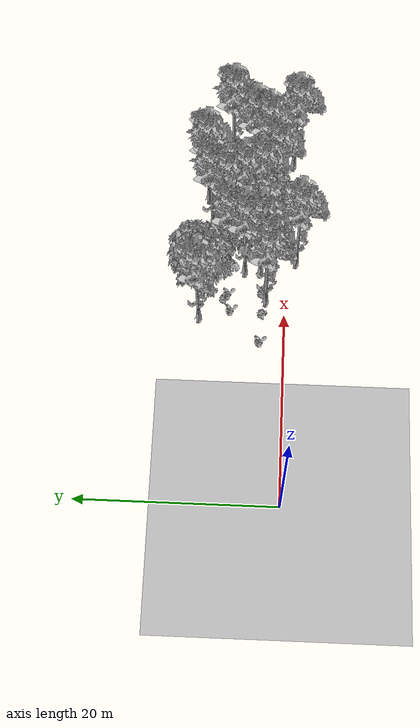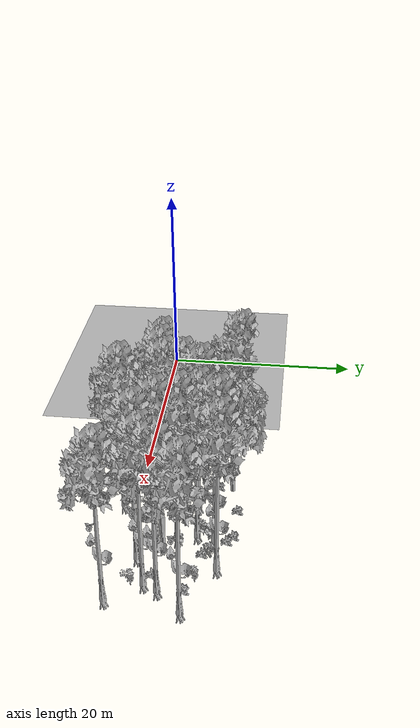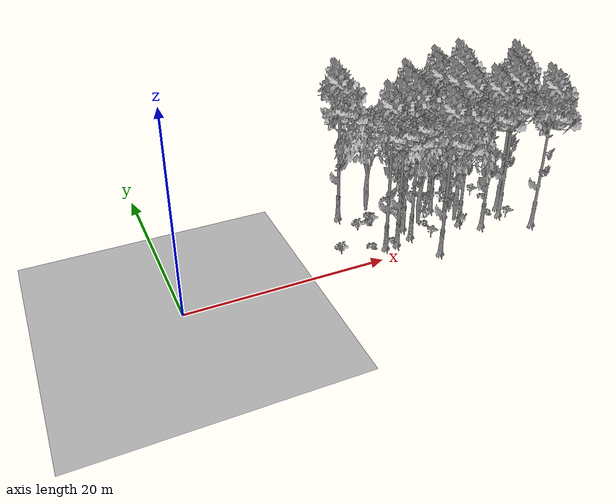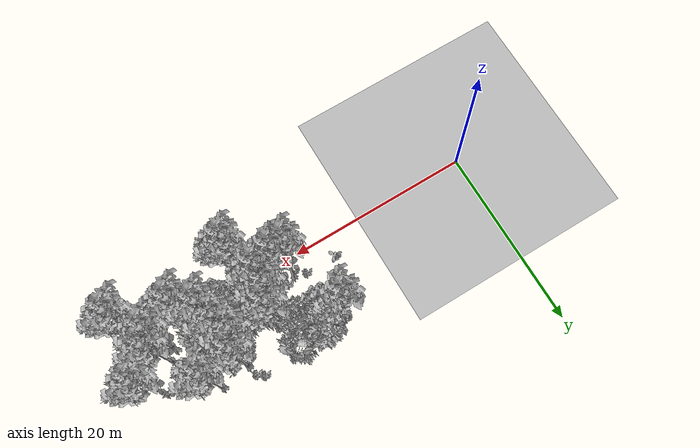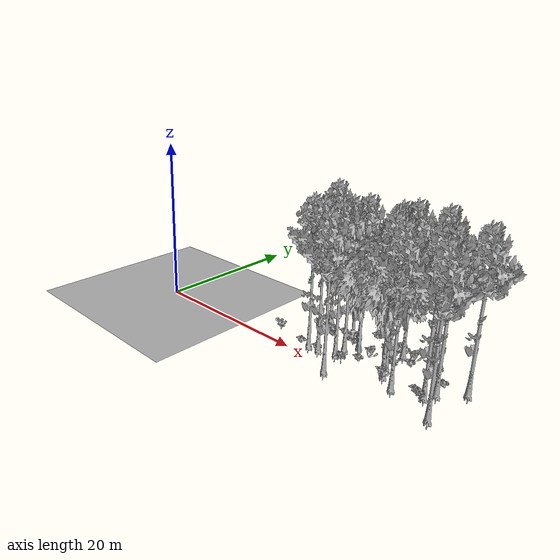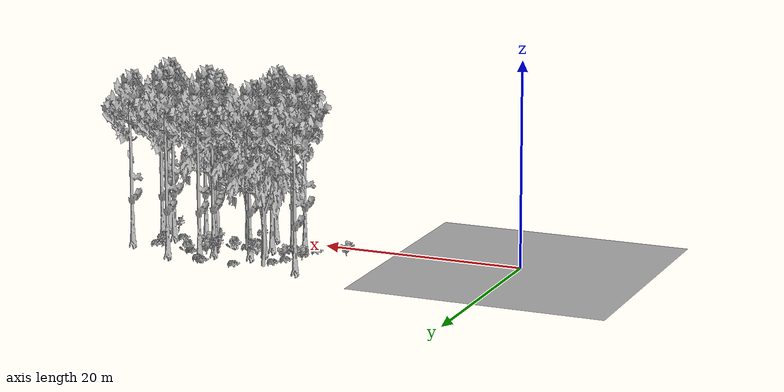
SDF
<sdf version="1.7">
 <world name="default">
  <model name="ground_plane">
   <static>1</static>
   <link name="link">
    <collision name="collision">
     <pose>-50 0 0 0 -0 0</pose>
     <geometry><plane><normal>0 0 1</normal><size>80 80</size></plane></geometry>
     <surface><contact><ode><min_depth>0.01</min_depth><max_vel>0</max_vel></ode></contact></surface>
    </collision>
    <visual name="grass">
     <cast_shadows>0</cast_shadows>
     <geometry>
      <mesh>
       <scale>0.46714285714285714 0.46714285714285714 0.1</scale>
       <uri>file://grass_plane/meshes/grass_plane.dae</uri>
      </mesh>
     </geometry>
    </visual>
   </link>
  </model>
  <model name="Tree 1">
   <static>1</static>
   <pose>36.011166176725425 3.5830698787518287 0 1.57079 -0 0</pose>
   <link name="link">
    <collision name="collision">
     <geometry><mesh><scale>3.5 5 3.5</scale><uri>model://tree_9/meshes/tree_9.obj</uri></mesh></geometry>
    </collision>
    <visual name="visual">
     <geometry><mesh><scale>3.5 5 3.5</scale><uri>model://tree_9/meshes/tree_9.obj</uri></mesh></geometry>
    </visual>
   </link>
  </model>
  <model name="Tree 53">
   <static>1</static>
   <pose>26.41757852774535 4.227787707532244 0 1.57079 -0 0</pose>
   <link name="link">
    <collision name="collision">
     <geometry><mesh><scale>3.5 5 3.5</scale><uri>model://tree_2/meshes/tree_2.obj</uri></mesh></geometry>
    </collision>
    <visual name="visual">
     <geometry><mesh><scale>3.5 5 3.5</scale><uri>model://tree_2/meshes/tree_2.obj</uri></mesh></geometry>
    </visual>
   </link>
  </model>
  <model name="Tree 92">
   <static>1</static>
   <pose>24.65616780736501 2.5748100622785515 0 1.57079 -0 0</pose>
   <link name="link">
    <collision name="collision">
     <geometry><mesh><scale>3.5 5 3.5</scale><uri>model://tree_9/meshes/tree_9.obj</uri></mesh></geometry>
    </collision>
    <visual name="visual">
     <geometry><mesh><scale>3.5 5 3.5</scale><uri>model://tree_9/meshes/tree_9.obj</uri></mesh></geometry>
    </visual>
   </link>
  </model>
  <model name="Tree 158">
   <static>1</static>
   <pose>25.485224622960985 5.766367770752574 0 1.57079 -0 0</pose>
   <link name="link">
    <collision name="collision">
     <geometry><mesh><scale>3.5 5 3.5</scale><uri>model://tree_9/meshes/tree_9.obj</uri></mesh></geometry>
    </collision>
    <visual name="visual">
     <geometry><mesh><scale>3.5 5 3.5</scale><uri>model://tree_9/meshes/tree_9.obj</uri></mesh></geometry>
    </visual>
   </link>
  </model>
  <model name="Tree 161">
   <static>1</static>
   <pose>22.605358519482905 8.638592294109628 0 1.57079 -0 0</pose>
   <link name="link">
    <collision name="collision">
     <geometry><mesh><scale>3.5 5 3.5</scale><uri>model://tree_2/meshes/tree_2.obj</uri></mesh></geometry>
    </collision>
    <visual name="visual">
     <geometry><mesh><scale>3.5 5 3.5</scale><uri>model://tree_2/meshes/tree_2.obj</uri></mesh></geometry>
    </visual>
   </link>
  </model>
  <model name="Tree 180">
   <static>1</static>
   <pose>29.93284033761836 7.681021423904426 0 1.57079 -0 0</pose>
   <link name="link">
    <collision name="collision">
     <geometry><mesh><scale>3.5 5 3.5</scale><uri>model://tree_9/meshes/tree_9.obj</uri></mesh></geometry>
    </collision>
    <visual name="visual">
     <geometry><mesh><scale>3.5 5 3.5</scale><uri>model://tree_9/meshes/tree_9.obj</uri></mesh></geometry>
    </visual>
   </link>
  </model>
  <model name="Tree 213">
   <static>1</static>
   <pose>30.570684885395536 2.694745732019399 0 1.57079 -0 0</pose>
   <link name="link">
    <collision name="collision">
     <geometry><mesh><scale>3.5 5 3.5</scale><uri>model://tree_9/meshes/tree_9.obj</uri></mesh></geometry>
    </collision>
    <visual name="visual">
     <geometry><mesh><scale>3.5 5 3.5</scale><uri>model://tree_9/meshes/tree_9.obj</uri></mesh></geometry>
    </visual>
   </link>
  </model>
  <model name="Tree 247">
   <static>1</static>
   <pose>25.913943571221964 -1.0603098498243355 0 1.57079 -0 0</pose>
   <link name="link">
    <collision name="collision">
     <geometry><mesh><scale>3.5 5 3.5</scale><uri>model://tree_9/meshes/tree_9.obj</uri></mesh></geometry>
    </collision>
    <visual name="visual">
     <geometry><mesh><scale>3.5 5 3.5</scale><uri>model://tree_9/meshes/tree_9.obj</uri></mesh></geometry>
    </visual>
   </link>
  </model>
  <model name="Tree 306">
   <static>1</static>
   <pose>29.848794799827402 4.410744058598169 0 1.57079 -0 0</pose>
   <link name="link">
    <collision name="collision">
     <geometry><mesh><scale>3.5 5 3.5</scale><uri>model://tree_9/meshes/tree_9.obj</uri></mesh></geometry>
    </collision>
    <visual name="visual">
     <geometry><mesh><scale>3.5 5 3.5</scale><uri>model://tree_9/meshes/tree_9.obj</uri></mesh></geometry>
    </visual>
   </link>
  </model>
  <model name="Tree 310">
   <static>1</static>
   <pose>21.43689418973787 1.9416385594009427 0 1.57079 -0 0</pose>
   <link name="link">
    <collision name="collision">
     <geometry><mesh><scale>3.5 5 3.5</scale><uri>model://tree_9/meshes/tree_9.obj</uri></mesh></geometry>
    </collision>
    <visual name="visual">
     <geometry><mesh><scale>3.5 5 3.5</scale><uri>model://tree_9/meshes/tree_9.obj</uri></mesh></geometry>
    </visual>
   </link>
  </model>
  <model name="Tree 332">
   <static>1</static>
   <pose>33.082977608917886 8.20005149457024 0 1.57079 -0 0</pose>
   <link name="link">
    <collision name="collision">
     <geometry><mesh><scale>3.5 5 3.5</scale><uri>model://tree_9/meshes/tree_9.obj</uri></mesh></geometry>
    </collision>
    <visual name="visual">
     <geometry><mesh><scale>3.5 5 3.5</scale><uri>model://tree_9/meshes/tree_9.obj</uri></mesh></geometry>
    </visual>
   </link>
  </model>
  <model name="Tree 372">
   <static>1</static>
   <pose>24.690714505694665 4.172185700839826 0 1.57079 -0 0</pose>
   <link name="link">
    <collision name="collision">
     <geometry><mesh><scale>3.5 5 3.5</scale><uri>model://tree_9/meshes/tree_9.obj</uri></mesh></geometry>
    </collision>
    <visual name="visual">
     <geometry><mesh><scale>3.5 5 3.5</scale><uri>model://tree_9/meshes/tree_9.obj</uri></mesh></geometry>
    </visual>
   </link>
  </model>
  <model name="Tree 403">
   <static>1</static>
   <pose>35.37519654786941 2.337173214591374 0 1.57079 -0 0</pose>
   <link name="link">
    <collision name="collision">
     <geometry><mesh><scale>3.5 5 3.5</scale><uri>model://tree_9/meshes/tree_9.obj</uri></mesh></geometry>
    </collision>
    <visual name="visual">
     <geometry><mesh><scale>3.5 5 3.5</scale><uri>model://tree_9/meshes/tree_9.obj</uri></mesh></geometry>
    </visual>
   </link>
  </model>
  <model name="Tree 431">
   <static>1</static>
   <pose>37.396843473735686 -0.5809701913476317 0 1.57079 -0 0</pose>
   <link name="link">
    <collision name="collision">
     <geometry><mesh><scale>3.5 5 3.5</scale><uri>model://tree_9/meshes/tree_9.obj</uri></mesh></geometry>
    </collision>
    <visual name="visual">
     <geometry><mesh><scale>3.5 5 3.5</scale><uri>model://tree_9/meshes/tree_9.obj</uri></mesh></geometry>
    </visual>
   </link>
  </model>
  <model name="Tree 492">
   <static>1</static>
   <pose>19.398027254048856 8.67147882097278 0 1.57079 -0 0</pose>
   <link name="link">
    <collision name="collision">
     <geometry><mesh><scale>3.5 5 3.5</scale><uri>model://tree_9/meshes/tree_9.obj</uri></mesh></geometry>
    </collision>
    <visual name="visual">
     <geometry><mesh><scale>3.5 5 3.5</scale><uri>model://tree_9/meshes/tree_9.obj</uri></mesh></geometry>
    </visual>
   </link>
  </model>
  <model name="Tree 535">
   <static>1</static>
   <pose>30.211178976348307 3.179163354396202 0 1.57079 -0 0</pose>
   <link name="link">
    <collision name="collision">
     <geometry><mesh><scale>3.5 5 3.5</scale><uri>model://tree_2/meshes/tree_2.obj</uri></mesh></geometry>
    </collision>
    <visual name="visual">
     <geometry><mesh><scale>3.5 5 3.5</scale><uri>model://tree_2/meshes/tree_2.obj</uri></mesh></geometry>
    </visual>
   </link>
  </model>
  <model name="Tree 553">
   <static>1</static>
   <pose>29.204708767722906 6.0867261093357286 0 1.57079 -0 0</pose>
   <link name="link">
    <collision name="collision">
     <geometry><mesh><scale>3.5 5 3.5</scale><uri>model://tree_9/meshes/tree_9.obj</uri></mesh></geometry>
    </collision>
    <visual name="visual">
     <geometry><mesh><scale>3.5 5 3.5</scale><uri>model://tree_9/meshes/tree_9.obj</uri></mesh></geometry>
    </visual>
   </link>
  </model>
  <model name="Tree 617">
   <static>1</static>
   <pose>38.15550416428148 5.777747183673924 0 1.57079 -0 0</pose>
   <link name="link">
    <collision name="collision">
     <geometry><mesh><scale>3.5 5 3.5</scale><uri>model://tree_9/meshes/tree_9.obj</uri></mesh></geometry>
    </collision>
    <visual name="visual">
     <geometry><mesh><scale>3.5 5 3.5</scale><uri>model://tree_9/meshes/tree_9.obj</uri></mesh></geometry>
    </visual>
   </link>
  </model>
  <model name="Tree 629">
   <static>1</static>
   <pose>32.41717122554958 1.2761076037642738 0 1.57079 -0 0</pose>
   <link name="link">
    <collision name="collision">
     <geometry><mesh><scale>3.5 5 3.5</scale><uri>model://tree_9/meshes/tree_9.obj</uri></mesh></geometry>
    </collision>
    <visual name="visual">
     <geometry><mesh><scale>3.5 5 3.5</scale><uri>model://tree_9/meshes/tree_9.obj</uri></mesh></geometry>
    </visual>
   </link>
  </model>
  <model name="Tree 633">
   <static>1</static>
   <pose>22.739344329787663 1.9725892908579397 0 1.57079 -0 0</pose>
   <link name="link">
    <collision name="collision">
     <geometry><mesh><scale>3.5 5 3.5</scale><uri>model://tree_9/meshes/tree_9.obj</uri></mesh></geometry>
    </collision>
    <visual name="visual">
     <geometry><mesh><scale>3.5 5 3.5</scale><uri>model://tree_9/meshes/tree_9.obj</uri></mesh></geometry>
    </visual>
   </link>
  </model>
  <model name="Bush 28">
   <static>1</static>
   <pose>26.315735130325436 1.34230399729244 0 1.57079 -0 0</pose>
   <link name="link">
    <collision name="collision">
     <geometry><mesh><scale>2 2 2</scale><uri>model://bush_5/meshes/bush_5.obj</uri></mesh></geometry>
     <surface><contact><collide_without_contact>false</collide_without_contact></contact></surface>
    </collision>
    <visual name="visual">
     <geometry><mesh><scale>2 2 2</scale><uri>model://bush_5/meshes/bush_5.obj</uri></mesh></geometry>
    </visual>
   </link>
  </model>
  <model name="Bush 71">
   <static>1</static>
   <pose>35.58511829089555 5.676902397452288 0 1.57079 -0 0</pose>
   <link name="link">
    <collision name="collision">
     <geometry><mesh><scale>2 2 2</scale><uri>model://bush_2/meshes/bush_2.obj</uri></mesh></geometry>
     <surface><contact><collide_without_contact>false</collide_without_contact></contact></surface>
    </collision>
    <visual name="visual">
     <geometry><mesh><scale>2 2 2</scale><uri>model://bush_2/meshes/bush_2.obj</uri></mesh></geometry>
    </visual>
   </link>
  </model>
  <model name="Bush 85">
   <static>1</static>
   <pose>29.580902801178922 8.693277159983602 0 1.57079 -0 0</pose>
   <link name="link">
    <collision name="collision">
     <geometry><mesh><scale>2 2 2</scale><uri>model://bush_2/meshes/bush_2.obj</uri></mesh></geometry>
     <surface><contact><collide_without_contact>false</collide_without_contact></contact></surface>
    </collision>
    <visual name="visual">
     <geometry><mesh><scale>2 2 2</scale><uri>model://bush_2/meshes/bush_2.obj</uri></mesh></geometry>
    </visual>
   </link>
  </model>
  <model name="Bush 105">
   <static>1</static>
   <pose>26.824427063391653 3.6912222505641523 0 1.57079 -0 0</pose>
   <link name="link">
    <collision name="collision">
     <geometry><mesh><scale>2 2 2</scale><uri>model://bush_2/meshes/bush_2.obj</uri></mesh></geometry>
     <surface><contact><collide_without_contact>false</collide_without_contact></contact></surface>
    </collision>
    <visual name="visual">
     <geometry><mesh><scale>2 2 2</scale><uri>model://bush_2/meshes/bush_2.obj</uri></mesh></geometry>
    </visual>
   </link>
  </model>
  <model name="Bush 133">
   <static>1</static>
   <pose>34.10267542886211 2.8026644773143374 0 1.57079 -0 0</pose>
   <link name="link">
    <collision name="collision">
     <geometry><mesh><scale>2 2 2</scale><uri>model://bush_2/meshes/bush_2.obj</uri></mesh></geometry>
     <surface><contact><collide_without_contact>false</collide_without_contact></contact></surface>
    </collision>
    <visual name="visual">
     <geometry><mesh><scale>2 2 2</scale><uri>model://bush_2/meshes/bush_2.obj</uri></mesh></geometry>
    </visual>
   </link>
  </model>
  <model name="Bush 189">
   <static>1</static>
   <pose>30.580392645546354 2.30066911849552 0 1.57079 -0 0</pose>
   <link name="link">
    <collision name="collision">
     <geometry><mesh><scale>2 2 2</scale><uri>model://bush_4/meshes/bush_4.obj</uri></mesh></geometry>
     <surface><contact><collide_without_contact>false</collide_without_contact></contact></surface>
    </collision>
    <visual name="visual">
     <geometry><mesh><scale>2 2 2</scale><uri>model://bush_4/meshes/bush_4.obj</uri></mesh></geometry>
    </visual>
   </link>
  </model>
  <model name="Bush 190">
   <static>1</static>
   <pose>20.12661078701806 5.526568124979505 0 1.57079 -0 0</pose>
   <link name="link">
    <collision name="collision">
     <geometry><mesh><scale>2 2 2</scale><uri>model://bush_0/meshes/bush_0.obj</uri></mesh></geometry>
     <surface><contact><collide_without_contact>false</collide_without_contact></contact></surface>
    </collision>
    <visual name="visual">
     <geometry><mesh><scale>2 2 2</scale><uri>model://bush_0/meshes/bush_0.obj</uri></mesh></geometry>
    </visual>
   </link>
  </model>
  <model name="Bush 207">
   <static>1</static>
   <pose>21.920252499016904 5.851324796391836 0 1.57079 -0 0</pose>
   <link name="link">
    <collision name="collision">
     <geometry><mesh><scale>2 2 2</scale><uri>model://bush_0/meshes/bush_0.obj</uri></mesh></geometry>
     <surface><contact><collide_without_contact>false</collide_without_contact></contact></surface>
    </collision>
    <visual name="visual">
     <geometry><mesh><scale>2 2 2</scale><uri>model://bush_0/meshes/bush_0.obj</uri></mesh></geometry>
    </visual>
   </link>
  </model>
  <model name="Bush 208">
   <static>1</static>
   <pose>20.029500545215782 2.2553905638079073 0 1.57079 -0 0</pose>
   <link name="link">
    <collision name="collision">
     <geometry><mesh><scale>2 2 2</scale><uri>model://bush_2/meshes/bush_2.obj</uri></mesh></geometry>
     <surface><contact><collide_without_contact>false</collide_without_contact></contact></surface>
    </collision>
    <visual name="visual">
     <geometry><mesh><scale>2 2 2</scale><uri>model://bush_2/meshes/bush_2.obj</uri></mesh></geometry>
    </visual>
   </link>
  </model>
  <model name="Bush 210">
   <static>1</static>
   <pose>28.983905571287835 6.601693294160199 0 1.57079 -0 0</pose>
   <link name="link">
    <collision name="collision">
     <geometry><mesh><scale>2 2 2</scale><uri>model://bush_5/meshes/bush_5.obj</uri></mesh></geometry>
     <surface><contact><collide_without_contact>false</collide_without_contact></contact></surface>
    </collision>
    <visual name="visual">
     <geometry><mesh><scale>2 2 2</scale><uri>model://bush_5/meshes/bush_5.obj</uri></mesh></geometry>
    </visual>
   </link>
  </model>
  <model name="Bush 234">
   <static>1</static>
   <pose>29.492755870939177 7.120728841844048 0 1.57079 -0 0</pose>
   <link name="link">
    <collision name="collision">
     <geometry><mesh><scale>2 2 2</scale><uri>model://bush_0/meshes/bush_0.obj</uri></mesh></geometry>
     <surface><contact><collide_without_contact>false</collide_without_contact></contact></surface>
    </collision>
    <visual name="visual">
     <geometry><mesh><scale>2 2 2</scale><uri>model://bush_0/meshes/bush_0.obj</uri></mesh></geometry>
    </visual>
   </link>
  </model>
  <model name="Bush 235">
   <static>1</static>
   <pose>35.46094583200532 1.2874909534697991 0 1.57079 -0 0</pose>
   <link name="link">
    <collision name="collision">
     <geometry><mesh><scale>2 2 2</scale><uri>model://bush_5/meshes/bush_5.obj</uri></mesh></geometry>
     <surface><contact><collide_without_contact>false</collide_without_contact></contact></surface>
    </collision>
    <visual name="visual">
     <geometry><mesh><scale>2 2 2</scale><uri>model://bush_5/meshes/bush_5.obj</uri></mesh></geometry>
    </visual>
   </link>
  </model>
  <model name="Bush 258">
   <static>1</static>
   <pose>16.801927547430026 2.4967750526607517 0 1.57079 -0 0</pose>
   <link name="link">
    <collision name="collision">
     <geometry><mesh><scale>2 2 2</scale><uri>model://bush_0/meshes/bush_0.obj</uri></mesh></geometry>
     <surface><contact><collide_without_contact>false</collide_without_contact></contact></surface>
    </collision>
    <visual name="visual">
     <geometry><mesh><scale>2 2 2</scale><uri>model://bush_0/meshes/bush_0.obj</uri></mesh></geometry>
    </visual>
   </link>
  </model>
  <model name="Bush 268">
   <static>1</static>
   <pose>31.33674824029559 7.303285781922725 0 1.57079 -0 0</pose>
   <link name="link">
    <collision name="collision">
     <geometry><mesh><scale>2 2 2</scale><uri>model://bush_4/meshes/bush_4.obj</uri></mesh></geometry>
     <surface><contact><collide_without_contact>false</collide_without_contact></contact></surface>
    </collision>
    <visual name="visual">
     <geometry><mesh><scale>2 2 2</scale><uri>model://bush_4/meshes/bush_4.obj</uri></mesh></geometry>
    </visual>
   </link>
  </model>
  <model name="Bush 270">
   <static>1</static>
   <pose>22.285575302567324 2.3143202648050476 0 1.57079 -0 0</pose>
   <link name="link">
    <collision name="collision">
     <geometry><mesh><scale>2 2 2</scale><uri>model://bush_2/meshes/bush_2.obj</uri></mesh></geometry>
     <surface><contact><collide_without_contact>false</collide_without_contact></contact></surface>
    </collision>
    <visual name="visual">
     <geometry><mesh><scale>2 2 2</scale><uri>model://bush_2/meshes/bush_2.obj</uri></mesh></geometry>
    </visual>
   </link>
  </model>
  <model name="Bush 286">
   <static>1</static>
   <pose>21.546684762957568 6.156371761342996 0 1.57079 -0 0</pose>
   <link name="link">
    <collision name="collision">
     <geometry><mesh><scale>2 2 2</scale><uri>model://bush_2/meshes/bush_2.obj</uri></mesh></geometry>
     <surface><contact><collide_without_contact>false</collide_without_contact></contact></surface>
    </collision>
    <visual name="visual">
     <geometry><mesh><scale>2 2 2</scale><uri>model://bush_2/meshes/bush_2.obj</uri></mesh></geometry>
    </visual>
   </link>
  </model>
  <model name="Bush 307">
   <static>1</static>
   <pose>34.578360164162646 6.5127237088838825 0 1.57079 -0 0</pose>
   <link name="link">
    <collision name="collision">
     <geometry><mesh><scale>2 2 2</scale><uri>model://bush_5/meshes/bush_5.obj</uri></mesh></geometry>
     <surface><contact><collide_without_contact>false</collide_without_contact></contact></surface>
    </collision>
    <visual name="visual">
     <geometry><mesh><scale>2 2 2</scale><uri>model://bush_5/meshes/bush_5.obj</uri></mesh></geometry>
    </visual>
   </link>
  </model>
  <model name="Bush 439">
   <static>1</static>
   <pose>31.29146681013566 6.721706552100358 0 1.57079 -0 0</pose>
   <link name="link">
    <collision name="collision">
     <geometry><mesh><scale>2 2 2</scale><uri>model://bush_2/meshes/bush_2.obj</uri></mesh></geometry>
     <surface><contact><collide_without_contact>false</collide_without_contact></contact></surface>
    </collision>
    <visual name="visual">
     <geometry><mesh><scale>2 2 2</scale><uri>model://bush_2/meshes/bush_2.obj</uri></mesh></geometry>
    </visual>
   </link>
  </model>
  <model name="Bush 442">
   <static>1</static>
   <pose>28.731926537315573 6.216059551790934 0 1.57079 -0 0</pose>
   <link name="link">
    <collision name="collision">
     <geometry><mesh><scale>2 2 2</scale><uri>model://bush_5/meshes/bush_5.obj</uri></mesh></geometry>
     <surface><contact><collide_without_contact>false</collide_without_contact></contact></surface>
    </collision>
    <visual name="visual">
     <geometry><mesh><scale>2 2 2</scale><uri>model://bush_5/meshes/bush_5.obj</uri></mesh></geometry>
    </visual>
   </link>
  </model>
  <model name="Bush 501">
   <static>1</static>
   <pose>22.3293745370121 7.363919536405419 0 1.57079 -0 0</pose>
   <link name="link">
    <collision name="collision">
     <geometry><mesh><scale>2 2 2</scale><uri>model://bush_2/meshes/bush_2.obj</uri></mesh></geometry>
     <surface><contact><collide_without_contact>false</collide_without_contact></contact></surface>
    </collision>
    <visual name="visual">
     <geometry><mesh><scale>2 2 2</scale><uri>model://bush_2/meshes/bush_2.obj</uri></mesh></geometry>
    </visual>
   </link>
  </model>
  <model name="Bush 511">
   <static>1</static>
   <pose>25.526464163173827 9.322441362463529 0 1.57079 -0 0</pose>
   <link name="link">
    <collision name="collision">
     <geometry><mesh><scale>2 2 2</scale><uri>model://bush_2/meshes/bush_2.obj</uri></mesh></geometry>
     <surface><contact><collide_without_contact>false</collide_without_contact></contact></surface>
    </collision>
    <visual name="visual">
     <geometry><mesh><scale>2 2 2</scale><uri>model://bush_2/meshes/bush_2.obj</uri></mesh></geometry>
    </visual>
   </link>
  </model>
  <model name="Bush 529">
   <static>1</static>
   <pose>30.57499917890287 4.605485506002992 0 1.57079 -0 0</pose>
   <link name="link">
    <collision name="collision">
     <geometry><mesh><scale>2 2 2</scale><uri>model://bush_0/meshes/bush_0.obj</uri></mesh></geometry>
     <surface><contact><collide_without_contact>false</collide_without_contact></contact></surface>
    </collision>
    <visual name="visual">
     <geometry><mesh><scale>2 2 2</scale><uri>model://bush_0/meshes/bush_0.obj</uri></mesh></geometry>
    </visual>
   </link>
  </model>
  <model name="Bush 540">
   <static>1</static>
   <pose>28.888643999835423 9.229637574580508 0 1.57079 -0 0</pose>
   <link name="link">
    <collision name="collision">
     <geometry><mesh><scale>2 2 2</scale><uri>model://bush_2/meshes/bush_2.obj</uri></mesh></geometry>
     <surface><contact><collide_without_contact>false</collide_without_contact></contact></surface>
    </collision>
    <visual name="visual">
     <geometry><mesh><scale>2 2 2</scale><uri>model://bush_2/meshes/bush_2.obj</uri></mesh></geometry>
    </visual>
   </link>
  </model>
  <model name="Bush 627">
   <static>1</static>
   <pose>27.618607909691278 4.703996101474168 0 1.57079 -0 0</pose>
   <link name="link">
    <collision name="collision">
     <geometry><mesh><scale>2 2 2</scale><uri>model://bush_4/meshes/bush_4.obj</uri></mesh></geometry>
     <surface><contact><collide_without_contact>false</collide_without_contact></contact></surface>
    </collision>
    <visual name="visual">
     <geometry><mesh><scale>2 2 2</scale><uri>model://bush_4/meshes/bush_4.obj</uri></mesh></geometry>
    </visual>
   </link>
  </model>
  <model name="Bush 636">
   <static>1</static>
   <pose>24.835301573957743 5.538957817281471 0 1.57079 -0 0</pose>
   <link name="link">
    <collision name="collision">
     <geometry><mesh><scale>2 2 2</scale><uri>model://bush_1/meshes/bush_1.obj</uri></mesh></geometry>
     <surface><contact><collide_without_contact>false</collide_without_contact></contact></surface>
    </collision>
    <visual name="visual">
     <geometry><mesh><scale>2 2 2</scale><uri>model://bush_1/meshes/bush_1.obj</uri></mesh></geometry>
    </visual>
   </link>
  </model>
 </world>
</sdf>
